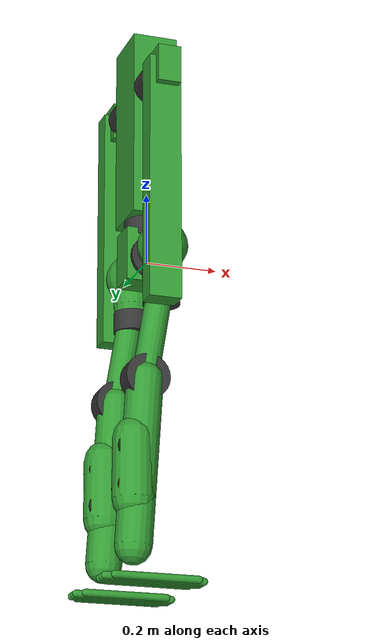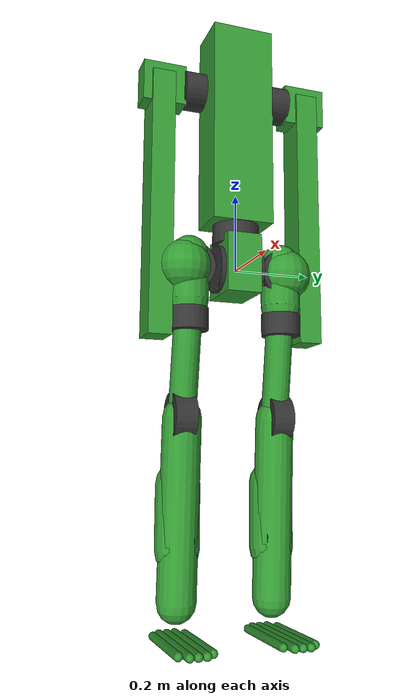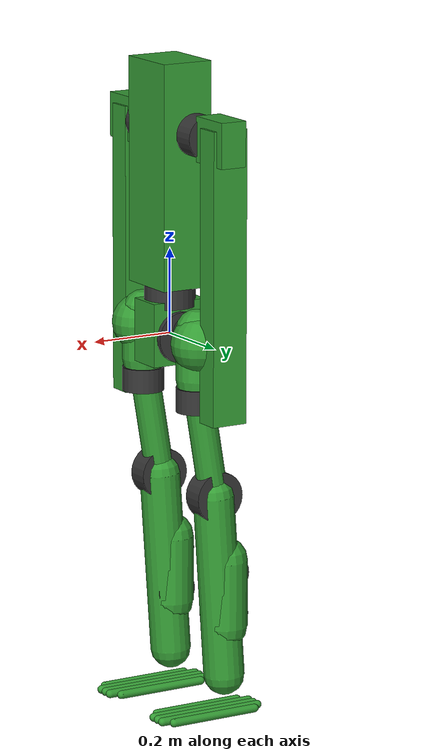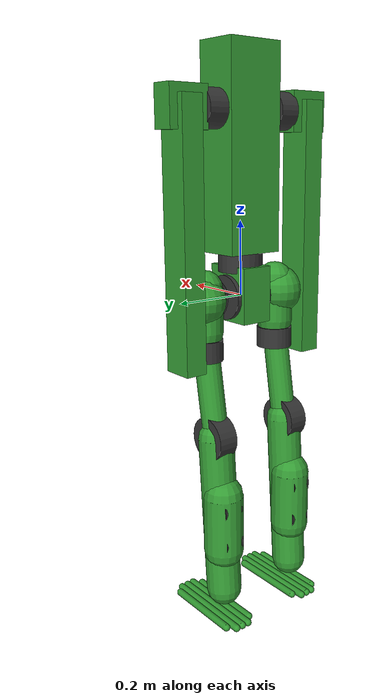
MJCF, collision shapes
<mujoco model="pygmalion_v3_printed">
  <compiler angle="radian" meshdir="meshes" autolimits="true"/>
  <default>
    <default class="pygmalion">
      <default class="visual">
        <geom group="2" type="mesh" density="0" material="silver" contype="0" conaffinity="0"/>
      </default>
      <default class="collision">
        <geom group="3" rgba=".2 .6 .2 .3" type="capsule" contype="1" conaffinity="1"/>
        <default class="foot_capsule">
          <geom type="capsule" size="0.01"/>
        </default>
      </default>
      <default class="hull">
        <geom group="4" type="mesh" density="0" material="hull" contype="0" conaffinity="0"/>
      </default>
      <site group="5" rgba="1 0 0 1"/>
    </default>
  </default>
  <asset>
    <material name="silver" rgba="0.7 0.7 0.7 1"/>
    <material name="hull" rgba="0.2 0.4 0.9 0.25"/>
    <material name="black" rgba="0.2 0.2 0.2 1"/>
    <material name="red" rgba="1.0 0.0 0.0 1.0"/>
    <mesh name="pelvis" file="pelvis.stl"/>
    <mesh name="pelvis_hull" file="pelvis_hull.stl"/>
    <mesh name="L_hip_pitch_link" file="hip_pitch_link.stl"/>
    <mesh name="L_hip_pitch_link_hull" file="hip_pitch_link_hull.stl"/>
    <mesh name="L_hip_roll_link" file="hip_roll_link.stl"/>
    <mesh name="L_hip_roll_link_hull" file="hip_roll_link_hull.stl"/>
    <mesh name="L_thigh" file="thigh.stl"/>
    <mesh name="L_thigh_hull" file="thigh_hull.stl"/>
    <mesh name="L_shin" file="shin.stl"/>
    <mesh name="L_shin_hull" file="shin_hull.stl"/>
    <mesh name="L_foot" file="foot.stl"/>
    <mesh name="L_foot_hull" file="foot_hull.stl"/>
    <mesh name="R_hip_pitch_link" file="R_hip_pitch_link.stl"/>
    <mesh name="R_hip_pitch_link_hull" file="R_hip_pitch_link_hull.stl"/>
    <mesh name="R_hip_roll_link" file="R_hip_roll_link.stl"/>
    <mesh name="R_hip_roll_link_hull" file="R_hip_roll_link_hull.stl"/>
    <mesh name="R_thigh" file="R_thigh.stl"/>
    <mesh name="R_thigh_hull" file="R_thigh_hull.stl"/>
    <mesh name="R_shin" file="R_shin.stl"/>
    <mesh name="R_shin_hull" file="R_shin_hull.stl"/>
    <mesh name="R_foot" file="R_foot.stl"/>
    <mesh name="R_foot_hull" file="R_foot_hull.stl"/>
    <mesh name="torso" file="torso.stl"/>
    <mesh name="torso_hull" file="torso_hull.stl"/>
    <mesh name="L_torso_shpitch" file="torso_shpitch.stl"/>
    <mesh name="L_shoulder_pitch_link" file="shoulder_pitch_link.stl"/>
    <mesh name="L_shoulder_pitch_link_hull" file="shoulder_pitch_link_hull.stl"/>
    <mesh name="L_arm" file="arm.stl"/>
    <mesh name="L_arm_hull" file="arm_hull.stl"/>
    <mesh name="R_torso_shpitch" file="R_torso_shpitch.stl"/>
    <mesh name="R_shoulder_pitch_link" file="R_shoulder_pitch_link.stl"/>
    <mesh name="R_shoulder_pitch_link_hull" file="R_shoulder_pitch_link_hull.stl"/>
    <mesh name="R_arm" file="R_arm.stl"/>
    <mesh name="R_arm_hull" file="R_arm_hull.stl"/>
  </asset>
  <worldbody>
    <body name="base_link" childclass="pygmalion">
      <freejoint name="root"/>
      <inertial pos="0.000579519 -0.00134141 0.0307872" mass="4.8405" fullinertia="0.0182081 0.0183896 0.0112987 2.29828e-05 -6.62215e-05 -0.000271916"/>
      <geom mesh="pelvis" class="visual"/>
      <geom name="pelvis_hull" mesh="pelvis_hull" class="hull"/>
      <geom name="L_hip_pitch_motor" type="cylinder" size="0.0600 0.0278" pos="0.00065 -0.02962 -0.00044" zaxis="0.0000 1.0000 0.0000" class="visual" material="black"/>
      <geom name="waist_yaw_motor" type="cylinder" size="0.0600 0.0278" pos="0.00053 0.00058 0.09393" zaxis="0.0000 0.0000 1.0000" class="visual" material="black"/>
      <geom name="R_hip_pitch_motor" type="cylinder" size="0.0600 0.0278" pos="0.00065 0.02962 -0.00044" zaxis="0.0000 -1.0000 0.0000" class="visual" material="black"/>
      <geom name="base_pelvis_collision" class="collision" type="box" pos="0 0 0.008" size="0.069 0.045 0.075"/>
      <site name="imu_in_base" size="0.03" pos="0.004 0 0.241"/>
      <body name="L_hip_pitch_link" pos="0 -0.1237 0">
        <inertial pos="0.00137371 0.00686121 0.000902732" mass="1.7829" fullinertia="0.00411426 0.00262776 0.00292982 1.831e-05 5.99258e-06 -3.35308e-05"/>
        <joint name="L_hip_pitch_joint" pos="0 0 0" axis="0 1 0" range="-2.0943951023931953 0.4363323129985824"/>
        <geom mesh="L_hip_pitch_link" class="visual"/>
        <geom name="L_hip_pitch_link_hull" mesh="L_hip_pitch_link_hull" class="hull"/>
        <geom name="L_hip_roll_motor" type="cylinder" size="0.0600 0.0278" pos="0.00317 0.00061 0.00049" zaxis="-1.0000 0.0000 0.0000" class="visual" material="black"/>
        <geom name="L_hip_pitch_collision" class="collision" type="sphere" pos="0.0 -0.012 0.0" size="0.068"/>
        <body name="L_hip_roll_link" pos="0 0 0">
          <inertial pos="0.00097096 -0.00144805 -0.119924" mass="1.2868" fullinertia="0.00322273 0.00329604 0.00189066 -2.78163e-06 -0.000148859 8.91068e-05"/>
          <joint name="L_hip_roll_joint" pos="0 0 0" axis="1 0 0" range="-1.4835298641951802 0.4363323129985824"/>
          <geom mesh="L_hip_roll_link" class="visual"/>
          <geom name="L_hip_roll_link_hull" mesh="L_hip_roll_link_hull" class="hull"/>
          <geom name="L_hip_yaw_motor" type="cylinder" size="0.0495 0.0283" pos="0.00006 0.00003 -0.13303" zaxis="0.0000 0.0000 1.0000" class="visual" material="black"/>
          <geom name="L_hip_roll_collision" class="collision" type="capsule" fromto="0 0 0.03  0 0 -0.085" size="0.05"/>
          <body name="L_thigh_link" pos="0 0 0">
            <inertial pos="-0.0355152 -0.00136508 -0.334013" mass="2.0704" fullinertia="0.0127467 0.0148052 0.00388313 -1.00417e-05 -0.00238253 -8.03662e-05"/>
            <joint name="L_hip_yaw_joint" pos="0 0 0" axis="0 0 -1" range="-0.7853981633974483 0.7853981633974483"/>
            <geom mesh="L_thigh" class="visual"/>
            <geom name="L_thigh_link_hull" mesh="L_thigh_hull" class="hull"/>
            <geom name="L_knee_motor" type="cylinder" size="0.0600 0.0278" pos="-0.04495 -0.00318 -0.36922" zaxis="0.0000 1.0000 0.0000" class="visual" material="black"/>
            <geom name="L_thigh_collision" class="collision" type="capsule" fromto="-0.005 0 -0.13  -0.045 0 -0.37" size="0.0349"/>
            <body name="L_shin_link" pos="-0.045 0 -0.37">
              <inertial pos="-0.0301064 -0.00029481 -0.235725" mass="2.6458" fullinertia="0.0232026 0.024201 0.00369954 -1.10277e-06 -0.00174538 -0.000153554"/>
              <joint name="L_knee_joint" pos="0 0 0" axis="0 -1 0" range="-2.0943951023931953 0.0"/>
              <geom mesh="L_shin" class="visual"/>
              <geom name="L_shin_link_hull" mesh="L_shin_hull" class="hull"/>
              <geom name="L_ankle_b_motor" type="cylinder" size="0.0495 0.0283" pos="-0.02994 -0.00172 -0.19003" zaxis="0.0000 1.0000 0.0000" class="visual" material="black"/>
              <geom name="L_ankle_a_motor" type="cylinder" size="0.0495 0.0283" pos="-0.03006 0.00172 -0.29003" zaxis="0.0000 1.0000 0.0000" class="visual" material="black"/>
              <geom name="L_shin_collision" class="collision" type="capsule" fromto="0 0 0.0  -0.03 0 -0.44" size="0.0485"/>
              <geom name="L_shin_motors_collision" class="collision" type="capsule" fromto="-0.03 0 -0.16  -0.03 0 -0.32" size="0.055"/>
              <body name="L_ankle_pitch_link" pos="-0.03 0 -0.49">
                <inertial pos="0 0 0" mass="0.040016" fullinertia="1.45826e-05 3.9586e-06 1.42452e-05 -7.016e-09 -4.7e-08 -3.964e-08"/>
                <joint name="L_ankle_pitch_joint" pos="0 0 0" axis="0 -1 0" range="-0.8726646259971648 0.5235987755982988"/>
                <body name="L_foot_link" pos="0 0 0">
                  <inertial pos="0.00823549 0.00273084 -0.0109679" mass="0.4241" fullinertia="0.00148532 0.00286965 0.00214933 7.43199e-05 0.000470153 -0.000166111"/>
                  <joint name="L_ankle_roll_joint" pos="0 0 0" axis="-1 0 0" range="-0.3490658503988659 0.3490658503988659"/>
                  <geom mesh="L_foot" class="visual"/>
                  <geom name="L_foot_link_hull" mesh="L_foot_hull" class="hull"/>
                  <site name="left_foot" pos="0.05 0 -0.043" size="0.01"/>
                  <geom name="L_foot2_collision" class="foot_capsule" fromto="-0.060 -0.040 -0.033  0.160 -0.040 -0.033"/>
                  <geom name="L_foot3_collision" class="foot_capsule" fromto="-0.080 -0.020 -0.033  0.180 -0.020 -0.033"/>
                  <geom name="L_foot4_collision" class="foot_capsule" fromto="-0.080 0.000 -0.033  0.180 0.000 -0.033"/>
                  <geom name="L_foot5_collision" class="foot_capsule" fromto="-0.080 0.020 -0.033  0.180 0.020 -0.033"/>
                  <geom name="L_foot6_collision" class="foot_capsule" fromto="-0.060 0.040 -0.033  0.160 0.040 -0.033"/>
                </body>
              </body>
            </body>
          </body>
        </body>
      </body>
      <body name="R_hip_pitch_link" pos="0 0.1237 0">
        <inertial pos="0.00137371 -0.00686121 0.000902732" mass="1.7829" fullinertia="0.00411426 0.00262776 0.00292982 -1.831e-05 5.99258e-06 3.35308e-05"/>
        <joint name="R_hip_pitch_joint" pos="0 0 0" axis="0 1 0" range="-2.0943951023931953 0.4363323129985824"/>
        <geom mesh="R_hip_pitch_link" class="visual"/>
        <geom name="R_hip_pitch_link_hull" mesh="R_hip_pitch_link_hull" class="hull"/>
        <geom name="R_hip_roll_motor" type="cylinder" size="0.0600 0.0278" pos="0.00317 -0.00061 0.00049" zaxis="-1.0000 -0.0000 0.0000" class="visual" material="black"/>
        <geom name="R_hip_pitch_collision" class="collision" type="sphere" pos="0.0 0.012 0.0" size="0.068"/>
        <body name="R_hip_roll_link" pos="0 0 0">
          <inertial pos="0.00097096 0.00144805 -0.119924" mass="1.2868" fullinertia="0.00322273 0.00329604 0.00189066 2.78163e-06 -0.000148859 -8.91068e-05"/>
          <joint name="R_hip_roll_joint" pos="0 0 0" axis="-1 0 0" range="-1.4835298641951802 0.4363323129985824"/>
          <geom mesh="R_hip_roll_link" class="visual"/>
          <geom name="R_hip_roll_link_hull" mesh="R_hip_roll_link_hull" class="hull"/>
          <geom name="R_hip_yaw_motor" type="cylinder" size="0.0495 0.0283" pos="0.00006 -0.00003 -0.13303" zaxis="0.0000 -0.0000 1.0000" class="visual" material="black"/>
          <geom name="R_hip_roll_collision" class="collision" type="capsule" fromto="0 0 0.03  0 0 -0.085" size="0.05"/>
          <body name="R_thigh_link" pos="0 0 0">
            <inertial pos="-0.0355152 0.00136508 -0.334013" mass="2.0704" fullinertia="0.0127467 0.0148052 0.00388313 1.00417e-05 -0.00238253 8.03662e-05"/>
            <joint name="R_hip_yaw_joint" pos="0 0 0" axis="0 0 -1" range="-0.7853981633974483 0.7853981633974483"/>
            <geom mesh="R_thigh" class="visual"/>
            <geom name="R_thigh_link_hull" mesh="R_thigh_hull" class="hull"/>
            <geom name="R_knee_motor" type="cylinder" size="0.0600 0.0278" pos="-0.04495 0.00318 -0.36922" zaxis="0.0000 -1.0000 0.0000" class="visual" material="black"/>
            <geom name="R_thigh_collision" class="collision" type="capsule" fromto="-0.005 0 -0.13  -0.045 0 -0.37" size="0.0349"/>
            <body name="R_shin_link" pos="-0.045 0 -0.37">
              <inertial pos="-0.0301064 0.00029481 -0.235725" mass="2.6458" fullinertia="0.0232026 0.024201 0.00369954 1.10277e-06 -0.00174538 0.000153554"/>
              <joint name="R_knee_joint" pos="0 0 0" axis="0 -1 0" range="-2.0943951023931953 0.0"/>
              <geom mesh="R_shin" class="visual"/>
              <geom name="R_shin_link_hull" mesh="R_shin_hull" class="hull"/>
              <geom name="R_ankle_b_motor" type="cylinder" size="0.0495 0.0283" pos="-0.02994 0.00172 -0.19003" zaxis="0.0000 -1.0000 0.0000" class="visual" material="black"/>
              <geom name="R_ankle_a_motor" type="cylinder" size="0.0495 0.0283" pos="-0.03006 -0.00172 -0.29003" zaxis="0.0000 -1.0000 0.0000" class="visual" material="black"/>
              <geom name="R_shin_collision" class="collision" type="capsule" fromto="0 0 0.0  -0.03 0 -0.44" size="0.0485"/>
              <geom name="R_shin_motors_collision" class="collision" type="capsule" fromto="-0.03 0 -0.16  -0.03 0 -0.32" size="0.055"/>
              <body name="R_ankle_pitch_link" pos="-0.03 0 -0.49">
                <inertial pos="0 0 0" mass="0.040016" fullinertia="1.45826e-05 3.9586e-06 1.42452e-05 7.016e-09 -4.7e-08 3.964e-08"/>
                <joint name="R_ankle_pitch_joint" pos="0 0 0" axis="0 -1 0" range="-0.8726646259971648 0.5235987755982988"/>
                <body name="R_foot_link" pos="0 0 0">
                  <inertial pos="0.00823549 -0.00273084 -0.0109679" mass="0.4241" fullinertia="0.00148532 0.00286965 0.00214933 -7.43199e-05 0.000470153 0.000166111"/>
                  <joint name="R_ankle_roll_joint" pos="0 0 0" axis="1 0 0" range="-0.3490658503988659 0.3490658503988659"/>
                  <geom mesh="R_foot" class="visual"/>
                  <geom name="R_foot_link_hull" mesh="R_foot_hull" class="hull"/>
                  <site name="right_foot" pos="0.05 0 -0.043" size="0.01"/>
                  <geom name="R_foot2_collision" class="foot_capsule" fromto="-0.060 -0.040 -0.033  0.160 -0.040 -0.033"/>
                  <geom name="R_foot3_collision" class="foot_capsule" fromto="-0.080 -0.020 -0.033  0.180 -0.020 -0.033"/>
                  <geom name="R_foot4_collision" class="foot_capsule" fromto="-0.080 0.000 -0.033  0.180 0.000 -0.033"/>
                  <geom name="R_foot5_collision" class="foot_capsule" fromto="-0.080 0.020 -0.033  0.180 0.020 -0.033"/>
                  <geom name="R_foot6_collision" class="foot_capsule" fromto="-0.060 0.040 -0.033  0.160 0.040 -0.033"/>
                </body>
              </body>
            </body>
          </body>
        </body>
      </body>
      <body name="torso_link" pos="0 0 0.1175">
        <inertial pos="-0.0151972 -4.8463e-05 0.279032" mass="5.9658" fullinertia="0.161967 0.134253 0.0397492 7.23011e-06 0.000427987 0.000639134"/>
        <joint name="waist_yaw_joint" pos="0 0 0" axis="0 0 1" range="-1.0471975511965976 1.0471975511965976"/>
        <geom mesh="torso" class="visual"/>
        <geom name="torso_hull" mesh="torso_hull" class="hull"/>
        <geom mesh="L_torso_shpitch" class="visual" material="black"/>
        <geom mesh="R_torso_shpitch" class="visual" material="black"/>
        <geom name="L_shoulder_pitch_motor" type="cylinder" size="0.0495 0.0283" pos="-0.01506 -0.11603 0.36253" zaxis="0.0000 1.0000 0.0000" class="visual" material="black"/>
        <geom name="neck_pitch_motor" type="cylinder" size="0.0285 0.0257" pos="-0.01500 -0.00211 0.48950" zaxis="0.0000 1.0000 0.0000" class="visual" material="black"/>
        <geom name="neck_yaw_motor" type="cylinder" size="0.0418 0.0227" pos="-0.01500 0.00002 0.42983" zaxis="0.0000 0.0000 1.0000" class="visual" material="black"/>
        <geom name="R_shoulder_pitch_motor" type="cylinder" size="0.0495 0.0283" pos="-0.01506 0.11603 0.36253" zaxis="0.0000 -1.0000 0.0000" class="visual" material="black"/>
        <geom name="torso_collision" class="collision" type="box" pos="0.0000 0.0000 0.2642" size="0.0625 0.0800 0.2642"/>
          <body name="L_shoulder_pitch_link" pos="-0.015 -0.2 0.3625">
            <inertial pos="-0.00184376 0.00689754 2.57811e-05" mass="1.1776" fullinertia="0.00200274 0.00132509 0.00152136 -1.60739e-05 6.32106e-06 6.945e-07"/>
            <joint name="L_shoulder_pitch_joint" pos="0 0 0" axis="0 1 0" range="-3.141592653589793 1.0471975511965976"/>
            <geom mesh="L_shoulder_pitch_link" class="visual"/>
            <geom name="L_shoulder_pitch_link_hull" mesh="L_shoulder_pitch_link_hull" class="hull"/>
            <geom name="L_shoulder_roll_motor" type="cylinder" size="0.0495 0.0283" pos="-0.00247 -0.00006 0.00003" zaxis="-1.0000 0.0000 0.0000" class="visual" material="black"/>
            <geom name="L_shoulder_pitch_link_collision" class="collision" type="box" pos="-0.0033 0.0038 0.0000" size="0.0318 0.0562 0.0529"/>
            <body name="L_arm_link" pos="0 0 0">
              <inertial pos="-0.00594707 -0.000128843 -0.256052" mass="2.843" fullinertia="0.17514 0.176762 0.00250616 -2.05766e-06 0.00274511 6.65745e-05"/>
              <joint name="L_shoulder_roll_joint" pos="0 0 0" axis="1 0 0" range="-0.5585053606381855 0.5235987755982988"/>
              <geom mesh="L_arm" class="visual"/>
              <geom name="L_arm_link_hull" mesh="L_arm_hull" class="hull"/>
              <geom name="L_arm_link_collision" class="collision" type="box" pos="-0.0085 0.0000 -0.3135" size="0.0440 0.0300 0.3435"/>
            </body>
          </body>
          <body name="R_shoulder_pitch_link" pos="-0.015 0.2 0.3625">
            <inertial pos="-0.00184376 -0.00689754 2.57811e-05" mass="1.1776" fullinertia="0.00200274 0.00132509 0.00152136 1.60739e-05 6.32106e-06 -6.945e-07"/>
            <joint name="R_shoulder_pitch_joint" pos="0 0 0" axis="0 1 0" range="-3.141592653589793 1.0471975511965976"/>
            <geom mesh="R_shoulder_pitch_link" class="visual"/>
            <geom name="R_shoulder_pitch_link_hull" mesh="R_shoulder_pitch_link_hull" class="hull"/>
            <geom name="R_shoulder_roll_motor" type="cylinder" size="0.0495 0.0283" pos="-0.00247 0.00006 0.00003" zaxis="-1.0000 -0.0000 0.0000" class="visual" material="black"/>
            <geom name="R_shoulder_pitch_link_collision" class="collision" type="box" pos="-0.0033 -0.0038 0.0000" size="0.0318 0.0562 0.0529"/>
            <body name="R_arm_link" pos="0 0 0">
              <inertial pos="-0.00594707 0.000128843 -0.256052" mass="2.843" fullinertia="0.17514 0.176762 0.00250616 2.05766e-06 0.00274511 -6.65745e-05"/>
              <joint name="R_shoulder_roll_joint" pos="0 0 0" axis="-1 0 0" range="-0.5585053606381855 0.5235987755982988"/>
              <geom mesh="R_arm" class="visual"/>
              <geom name="R_arm_link_hull" mesh="R_arm_hull" class="hull"/>
              <geom name="R_arm_link_collision" class="collision" type="box" pos="-0.0085 0.0000 -0.3135" size="0.0440 0.0300 0.3435"/>
            </body>
          </body>
      </body>
    </body>
  </worldbody>
  <contact>
    <exclude body1="base_link" body2="L_hip_pitch_link"/>
    <exclude body1="L_hip_pitch_link" body2="L_hip_roll_link"/>
    <exclude body1="L_hip_roll_link" body2="L_thigh_link"/>
    <exclude body1="L_thigh_link" body2="L_shin_link"/>
    <exclude body1="L_shin_link" body2="L_ankle_pitch_link"/>
    <exclude body1="L_ankle_pitch_link" body2="L_foot_link"/>
    <exclude body1="base_link" body2="L_hip_roll_link"/>
    <exclude body1="L_hip_pitch_link" body2="L_thigh_link"/>
    <exclude body1="base_link" body2="R_hip_pitch_link"/>
    <exclude body1="R_hip_pitch_link" body2="R_hip_roll_link"/>
    <exclude body1="R_hip_roll_link" body2="R_thigh_link"/>
    <exclude body1="R_thigh_link" body2="R_shin_link"/>
    <exclude body1="R_shin_link" body2="R_ankle_pitch_link"/>
    <exclude body1="R_ankle_pitch_link" body2="R_foot_link"/>
    <exclude body1="base_link" body2="R_hip_roll_link"/>
    <exclude body1="R_hip_pitch_link" body2="R_thigh_link"/>
    <exclude body1="base_link" body2="torso_link"/>
    <exclude body1="torso_link" body2="L_shoulder_pitch_link"/>
    <exclude body1="L_shoulder_pitch_link" body2="L_arm_link"/>
    <exclude body1="torso_link" body2="L_arm_link"/>
    <exclude body1="L_arm_link" body2="L_hip_pitch_link"/>
    <exclude body1="L_arm_link" body2="L_hip_roll_link"/>
    <exclude body1="torso_link" body2="R_shoulder_pitch_link"/>
    <exclude body1="R_shoulder_pitch_link" body2="R_arm_link"/>
    <exclude body1="torso_link" body2="R_arm_link"/>
    <exclude body1="R_arm_link" body2="R_hip_pitch_link"/>
    <exclude body1="R_arm_link" body2="R_hip_roll_link"/>
  </contact>
  <sensor>
    <gyro name="imu_ang_vel" site="imu_in_base"/>
    <velocimeter name="imu_lin_vel" site="imu_in_base"/>
    <accelerometer name="imu_lin_acc" site="imu_in_base"/>
    <framezaxis name="imu_upvector" objtype="body" objname="world" reftype="site" refname="imu_in_base"/>
    <subtreeangmom name="root_angmom" body="base_link"/>
  </sensor>
</mujoco>
